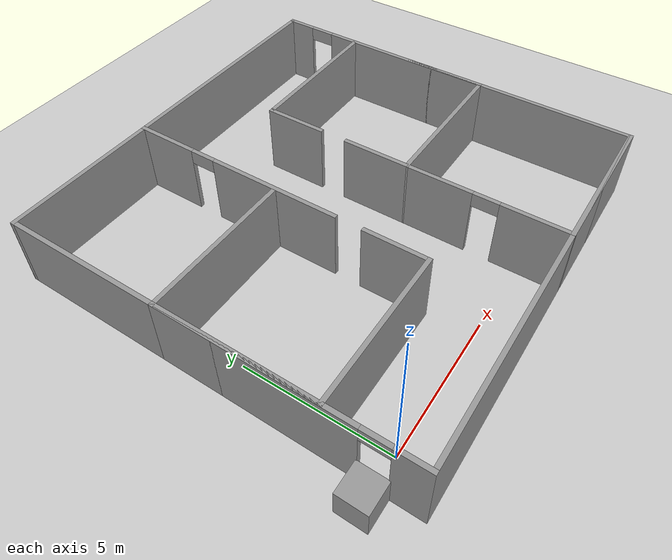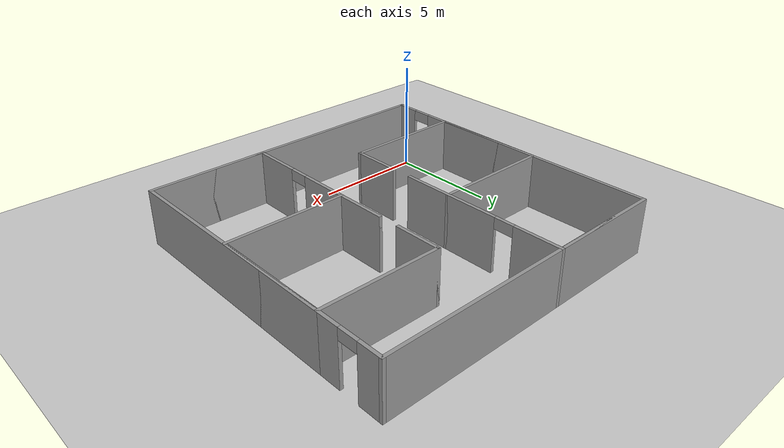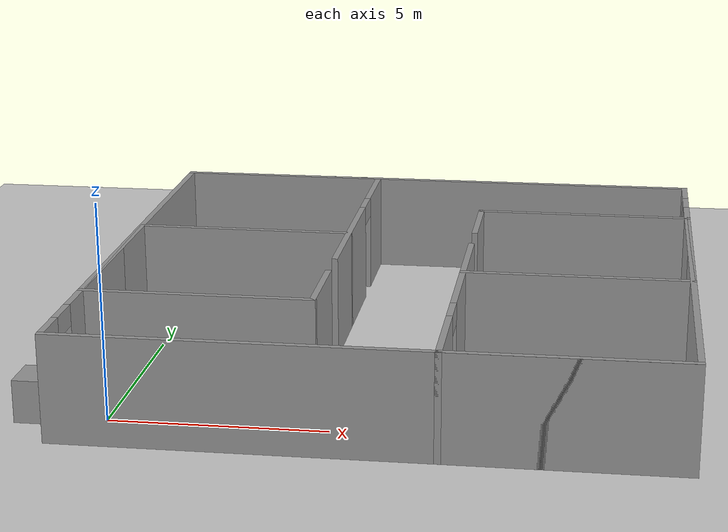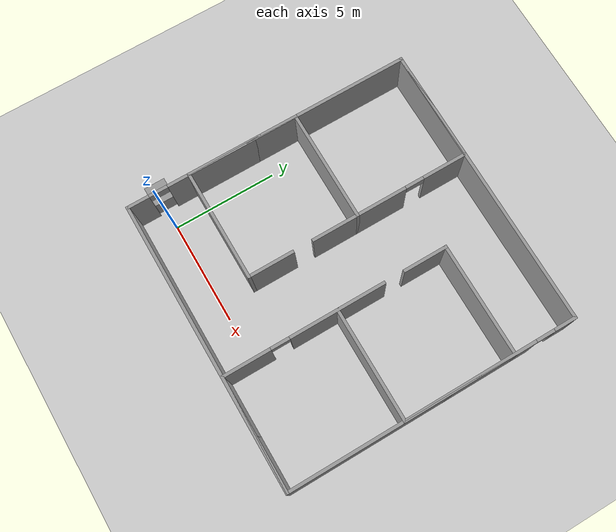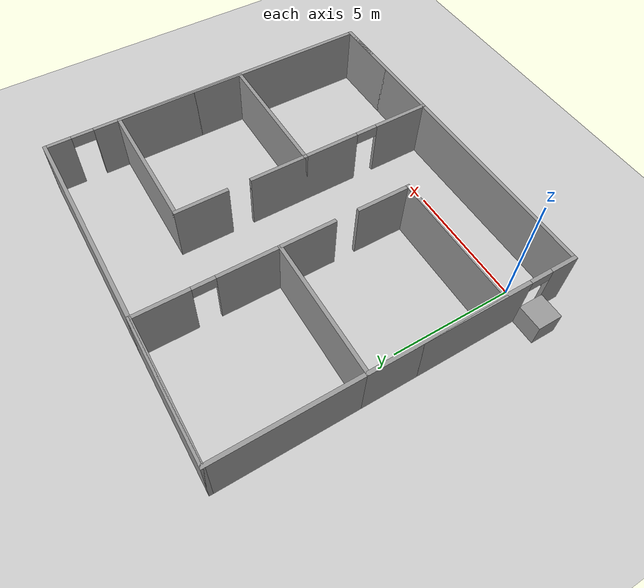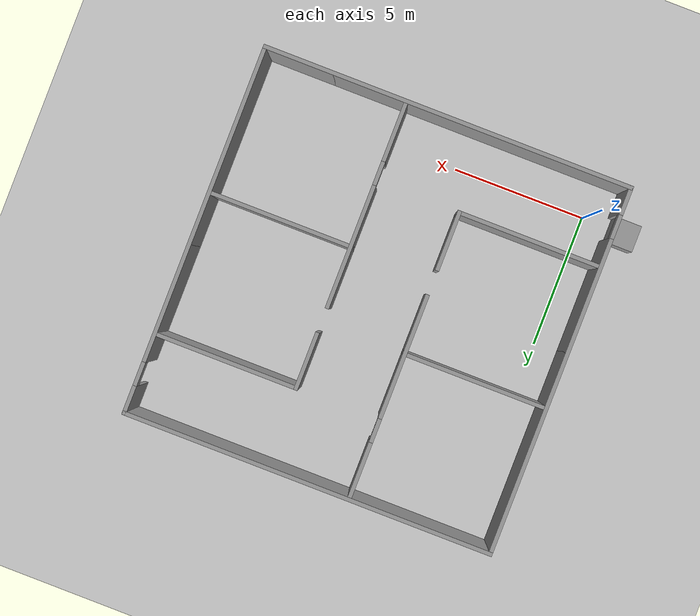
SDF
<sdf version="1.7">
 <world name="default">
  <light name="sun" type="directional">
   <pose>0 0 10 0 -0 0</pose>
   <diffuse>0.8 0.8 0.8 1</diffuse>
   <specular>0.2 0.2 0.2 1</specular>
   <attenuation>
    <range>1000</range>
    <constant>0.9</constant>
    <linear>0.01</linear>
    <quadratic>0.001</quadratic>
   </attenuation>
   <direction>-0.5 0.1 -0.9</direction>
   <spot><inner_angle>0</inner_angle><outer_angle>0</outer_angle><falloff>0</falloff></spot>
  </light>
  <model name="ground_plane">
   <static>1</static>
   <link name="link">
    <collision name="collision">
     <geometry><plane><normal>0 0 1</normal><size>100 100</size></plane></geometry>
     <surface><friction><ode><mu>100</mu><mu2>50</mu2></ode></friction></surface>
    </collision>
    <visual name="visual">
     <cast_shadows>0</cast_shadows>
     <geometry><plane><normal>0 0 1</normal><size>100 100</size></plane></geometry>
     <material>
      <script><uri>file://media/materials/scripts/gazebo.material</uri><name>Gazebo/Grey</name></script>
     </material>
    </visual>
   </link>
  </model>
  <gravity>0 0 -9.8</gravity>
  <magnetic_field>6e-06 2.3e-05 -4.2e-05</magnetic_field>
  <atmosphere type="adiabatic"/>
  <physics type="ode">
   <max_step_size>0.001</max_step_size>
   <real_time_factor>1</real_time_factor>
   <real_time_update_rate>1000</real_time_update_rate>
  </physics>
  <scene><ambient>0.4 0.4 0.4 1</ambient><background>0.7 0.7 0.7 1</background><shadows>1</shadows></scene>
  <audio><device>default</device></audio>
  <spherical_coordinates>
   <surface_model>EARTH_WGS84</surface_model>
   <latitude_deg>0</latitude_deg>
   <longitude_deg>0</longitude_deg>
   <elevation>0</elevation>
   <heading_deg>0</heading_deg>
  </spherical_coordinates>
  <model name="mapC">
   <pose>5.95767 5.54337 0 0 -0 0</pose>
   <link name="Wall_0">
    <collision name="Wall_0_Collision">
     <geometry><box><size>14 0.15 2.5</size></box></geometry>
     <pose>0 0 1.25 0 -0 0</pose>
    </collision>
    <visual name="Wall_0_Visual">
     <pose>0 0 1.25 0 -0 0</pose>
     <geometry><box><size>14 0.15 2.5</size></box></geometry>
     <material>
      <script><uri>file://media/materials/scripts/gazebo.material</uri><name>Gazebo/Grey</name></script>
      <ambient>1 1 1 1</ambient>
     </material>
     <meta><layer>0</layer></meta>
    </visual>
    <pose>0 -6.925 0 0 -0 0</pose>
   </link>
   <link name="Wall_1">
    <pose>6.925 0 0 0 -0 1.5708</pose>
    <visual name="Wall_1_Visual_0">
     <pose>-1.00314 0 1.25 0 -0 0</pose>
     <geometry><box><size>11.9937 0.15 2.5</size></box></geometry>
     <material>
      <script><uri>file://media/materials/scripts/gazebo.material</uri><name>Gazebo/Grey</name></script>
      <ambient>1 1 1 1</ambient>
     </material>
     <meta><layer>0</layer></meta>
    </visual>
    <collision name="Wall_1_Collision_0">
     <geometry><box><size>11.9937 0.15 2.5</size></box></geometry>
     <pose>-1.00314 0 1.25 0 -0 0</pose>
    </collision>
    <visual name="Wall_1_Visual_1">
     <pose>6.44686 0 1.25 0 -0 0</pose>
     <geometry><box><size>1.10629 0.15 2.5</size></box></geometry>
     <material>
      <script><uri>file://media/materials/scripts/gazebo.material</uri><name>Gazebo/Grey</name></script>
      <ambient>1 1 1 1</ambient>
     </material>
     <meta><layer>0</layer></meta>
    </visual>
    <collision name="Wall_1_Collision_1">
     <geometry><box><size>1.10629 0.15 2.5</size></box></geometry>
     <pose>6.44686 0 1.25 0 -0 0</pose>
    </collision>
    <visual name="Wall_1_Visual_2">
     <pose>5.44371 0 2.25 0 -0 0</pose>
     <geometry><box><size>0.9 0.15 0.5</size></box></geometry>
     <material>
      <script><uri>file://media/materials/scripts/gazebo.material</uri><name>Gazebo/Grey</name></script>
      <ambient>1 1 1 1</ambient>
     </material>
     <meta><layer>0</layer></meta>
    </visual>
    <collision name="Wall_1_Collision_2">
     <geometry><box><size>0.9 0.15 0.5</size></box></geometry>
     <pose>5.44371 0 2.25 0 -0 0</pose>
    </collision>
   </link>
   <link name="Wall_11">
    <collision name="Wall_11_Collision">
     <geometry><box><size>5.5 0.15 2.5</size></box></geometry>
     <pose>0 0 1.25 0 -0 0</pose>
    </collision>
    <visual name="Wall_11_Visual">
     <pose>0 0 1.25 0 -0 0</pose>
     <geometry><box><size>5.5 0.15 2.5</size></box></geometry>
     <material>
      <script><uri>file://media/materials/scripts/gazebo.material</uri><name>Gazebo/Grey</name></script>
      <ambient>1 1 1 1</ambient>
     </material>
     <meta><layer>0</layer></meta>
    </visual>
    <pose>4.25 -6.925 0 0 -0 3.14159</pose>
   </link>
   <link name="Wall_12">
    <pose>1.575 -1.5 0 0 -0 1.5708</pose>
    <visual name="Wall_12_Visual_0">
     <pose>-4.32245 0 1.25 0 -0 0</pose>
     <geometry><box><size>2.3551 0.15 2.5</size></box></geometry>
     <material>
      <script><uri>file://media/materials/scripts/gazebo.material</uri><name>Gazebo/Grey</name></script>
      <ambient>1 1 1 1</ambient>
     </material>
     <meta><layer>0</layer></meta>
    </visual>
    <collision name="Wall_12_Collision_0">
     <geometry><box><size>2.3551 0.15 2.5</size></box></geometry>
     <pose>-4.32245 0 1.25 0 -0 0</pose>
    </collision>
    <visual name="Wall_12_Visual_1">
     <pose>0.084817 0 1.25 0 -0 0</pose>
     <geometry><box><size>4.65944 0.15 2.5</size></box></geometry>
     <material>
      <script><uri>file://media/materials/scripts/gazebo.material</uri><name>Gazebo/Grey</name></script>
      <ambient>1 1 1 1</ambient>
     </material>
     <meta><layer>0</layer></meta>
    </visual>
    <collision name="Wall_12_Collision_1">
     <geometry><box><size>4.65944 0.15 2.5</size></box></geometry>
     <pose>0.084817 0 1.25 0 -0 0</pose>
    </collision>
    <visual name="Wall_12_Visual_2">
     <pose>4.40727 0 1.25 0 -0 0</pose>
     <geometry><box><size>2.18546 0.15 2.5</size></box></geometry>
     <material>
      <script><uri>file://media/materials/scripts/gazebo.material</uri><name>Gazebo/Grey</name></script>
      <ambient>1 1 1 1</ambient>
     </material>
     <meta><layer>0</layer></meta>
    </visual>
    <collision name="Wall_12_Collision_2">
     <geometry><box><size>2.18546 0.15 2.5</size></box></geometry>
     <pose>4.40727 0 1.25 0 -0 0</pose>
    </collision>
    <visual name="Wall_12_Visual_3">
     <pose>-2.6949 0 2.25 0 -0 0</pose>
     <geometry><box><size>0.9 0.15 0.5</size></box></geometry>
     <material>
      <script><uri>file://media/materials/scripts/gazebo.material</uri><name>Gazebo/Grey</name></script>
      <ambient>1 1 1 1</ambient>
     </material>
     <meta><layer>0</layer></meta>
    </visual>
    <collision name="Wall_12_Collision_3">
     <geometry><box><size>0.9 0.15 0.5</size></box></geometry>
     <pose>-2.6949 0 2.25 0 -0 0</pose>
    </collision>
    <visual name="Wall_12_Visual_4">
     <pose>2.41454 0 2.25 0 -0 0</pose>
     <geometry><box><size>0 0.15 0.5</size></box></geometry>
     <material>
      <script><uri>file://media/materials/scripts/gazebo.material</uri><name>Gazebo/Grey</name></script>
      <ambient>1 1 1 1</ambient>
     </material>
     <meta><layer>0</layer></meta>
    </visual>
    <collision name="Wall_12_Collision_4">
     <geometry><box><size>0 0.15 0.5</size></box></geometry>
     <pose>2.41454 0 2.25 0 -0 0</pose>
    </collision>
   </link>
   <link name="Wall_13">
    <collision name="Wall_13_Collision">
     <geometry><box><size>5.5 0.15 2.5</size></box></geometry>
     <pose>0 0 1.25 0 -0 0</pose>
    </collision>
    <visual name="Wall_13_Visual">
     <pose>0 0 1.25 0 -0 0</pose>
     <geometry><box><size>5.5 0.15 2.5</size></box></geometry>
     <material>
      <script><uri>file://media/materials/scripts/gazebo.material</uri><name>Gazebo/Grey</name></script>
      <ambient>1 1 1 1</ambient>
     </material>
     <meta><layer>0</layer></meta>
    </visual>
    <pose>4.25 3.925 0 0 -0 0</pose>
   </link>
   <link name="Wall_14">
    <collision name="Wall_14_Collision">
     <geometry><box><size>5.5 0.15 2.5</size></box></geometry>
     <pose>0 0 1.25 0 -0 0</pose>
    </collision>
    <visual name="Wall_14_Visual">
     <pose>0 0 1.25 0 -0 0</pose>
     <geometry><box><size>5.5 0.15 2.5</size></box></geometry>
     <material>
      <script><uri>file://media/materials/scripts/gazebo.material</uri><name>Gazebo/Grey</name></script>
      <ambient>1 1 1 1</ambient>
     </material>
     <meta><layer>0</layer></meta>
    </visual>
    <pose>6.925 1.25 0 0 -0 -1.5708</pose>
   </link>
   <link name="Wall_15">
    <collision name="Wall_15_Collision">
     <geometry><box><size>5.5 0.15 2.5</size></box></geometry>
     <pose>0 0 1.25 0 -0 0</pose>
    </collision>
    <visual name="Wall_15_Visual">
     <pose>0 0 1.25 0 -0 0</pose>
     <geometry><box><size>5.5 0.15 2.5</size></box></geometry>
     <material>
      <script><uri>file://media/materials/scripts/gazebo.material</uri><name>Gazebo/Grey</name></script>
      <ambient>1 1 1 1</ambient>
     </material>
     <meta><layer>0</layer></meta>
    </visual>
    <pose>4.25 -1.425 0 0 -0 3.14159</pose>
   </link>
   <link name="Wall_2">
    <collision name="Wall_2_Collision">
     <geometry><box><size>14 0.15 2.5</size></box></geometry>
     <pose>0 0 1.25 0 -0 0</pose>
    </collision>
    <visual name="Wall_2_Visual">
     <pose>0 0 1.25 0 -0 0</pose>
     <geometry><box><size>14 0.15 2.5</size></box></geometry>
     <material>
      <script><uri>file://media/materials/scripts/gazebo.material</uri><name>Gazebo/Grey</name></script>
      <ambient>1 1 1 1</ambient>
     </material>
     <meta><layer>0</layer></meta>
    </visual>
    <pose>0 6.925 0 0 -0 3.14159</pose>
   </link>
   <link name="Wall_3">
    <pose>-6.925 0 0 0 -0 -1.5708</pose>
    <visual name="Wall_3_Visual_0">
     <pose>-1.0018 0 1.25 0 -0 0</pose>
     <geometry><box><size>11.9964 0.15 2.5</size></box></geometry>
     <material>
      <script><uri>file://media/materials/scripts/gazebo.material</uri><name>Gazebo/Grey</name></script>
      <ambient>1 1 1 1</ambient>
     </material>
     <meta><layer>0</layer></meta>
    </visual>
    <collision name="Wall_3_Collision_0">
     <geometry><box><size>11.9964 0.15 2.5</size></box></geometry>
     <pose>-1.0018 0 1.25 0 -0 0</pose>
    </collision>
    <visual name="Wall_3_Visual_1">
     <pose>6.4482 0 1.25 0 -0 0</pose>
     <geometry><box><size>1.10359 0.15 2.5</size></box></geometry>
     <material>
      <script><uri>file://media/materials/scripts/gazebo.material</uri><name>Gazebo/Grey</name></script>
      <ambient>1 1 1 1</ambient>
     </material>
     <meta><layer>0</layer></meta>
    </visual>
    <collision name="Wall_3_Collision_1">
     <geometry><box><size>1.10359 0.15 2.5</size></box></geometry>
     <pose>6.4482 0 1.25 0 -0 0</pose>
    </collision>
    <visual name="Wall_3_Visual_2">
     <pose>5.44641 0 2.25 0 -0 0</pose>
     <geometry><box><size>0.9 0.15 0.5</size></box></geometry>
     <material>
      <script><uri>file://media/materials/scripts/gazebo.material</uri><name>Gazebo/Grey</name></script>
      <ambient>1 1 1 1</ambient>
     </material>
     <meta><layer>0</layer></meta>
    </visual>
    <collision name="Wall_3_Collision_2">
     <geometry><box><size>0.9 0.15 0.5</size></box></geometry>
     <pose>5.44641 0 2.25 0 -0 0</pose>
    </collision>
   </link>
   <link name="Wall_5">
    <collision name="Wall_5_Collision">
     <geometry><box><size>5.5 0.15 2.5</size></box></geometry>
     <pose>0 0 1.25 0 -0 0</pose>
    </collision>
    <visual name="Wall_5_Visual">
     <pose>0 0 1.25 0 -0 0</pose>
     <geometry><box><size>5.5 0.15 2.5</size></box></geometry>
     <material>
      <script><uri>file://media/materials/scripts/gazebo.material</uri><name>Gazebo/Grey</name></script>
      <ambient>1 1 1 1</ambient>
     </material>
     <meta><layer>0</layer></meta>
    </visual>
    <pose>-4.25 6.925 0 0 -0 0</pose>
   </link>
   <link name="Wall_6">
    <pose>-1.575 1.5 0 0 -0 -1.5708</pose>
    <visual name="Wall_6_Visual_0">
     <pose>-4.3856 0 1.25 0 -0 0</pose>
     <geometry><box><size>2.22881 0.15 2.5</size></box></geometry>
     <material>
      <script><uri>file://media/materials/scripts/gazebo.material</uri><name>Gazebo/Grey</name></script>
      <ambient>1 1 1 1</ambient>
     </material>
     <meta><layer>0</layer></meta>
    </visual>
    <collision name="Wall_6_Collision_0">
     <geometry><box><size>2.22881 0.15 2.5</size></box></geometry>
     <pose>-4.3856 0 1.25 0 -0 0</pose>
    </collision>
    <visual name="Wall_6_Visual_1">
     <pose>-0.02239 0 1.25 0 -0 0</pose>
     <geometry><box><size>4.69761 0.15 2.5</size></box></geometry>
     <material>
      <script><uri>file://media/materials/scripts/gazebo.material</uri><name>Gazebo/Grey</name></script>
      <ambient>1 1 1 1</ambient>
     </material>
     <meta><layer>0</layer></meta>
    </visual>
    <collision name="Wall_6_Collision_1">
     <geometry><box><size>4.69761 0.15 2.5</size></box></geometry>
     <pose>-0.02239 0 1.25 0 -0 0</pose>
    </collision>
    <visual name="Wall_6_Visual_2">
     <pose>4.36321 0 1.25 0 -0 0</pose>
     <geometry><box><size>2.27359 0.15 2.5</size></box></geometry>
     <material>
      <script><uri>file://media/materials/scripts/gazebo.material</uri><name>Gazebo/Grey</name></script>
      <ambient>1 1 1 1</ambient>
     </material>
     <meta><layer>0</layer></meta>
    </visual>
    <collision name="Wall_6_Collision_2">
     <geometry><box><size>2.27359 0.15 2.5</size></box></geometry>
     <pose>4.36321 0 1.25 0 -0 0</pose>
    </collision>
    <visual name="Wall_6_Visual_3">
     <pose>-2.82119 0 2.25 0 -0 0</pose>
     <geometry><box><size>0.9 0.15 0.5</size></box></geometry>
     <material>
      <script><uri>file://media/materials/scripts/gazebo.material</uri><name>Gazebo/Grey</name></script>
      <ambient>1 1 1 1</ambient>
     </material>
     <meta><layer>0</layer></meta>
    </visual>
    <collision name="Wall_6_Collision_3">
     <geometry><box><size>0.9 0.15 0.5</size></box></geometry>
     <pose>-2.82119 0 2.25 0 -0 0</pose>
    </collision>
    <visual name="Wall_6_Visual_4">
     <pose>2.32641 0 2.25 0 -0 0</pose>
     <geometry><box><size>0 0.15 0.5</size></box></geometry>
     <material>
      <script><uri>file://media/materials/scripts/gazebo.material</uri><name>Gazebo/Grey</name></script>
      <ambient>1 1 1 1</ambient>
     </material>
     <meta><layer>0</layer></meta>
    </visual>
    <collision name="Wall_6_Collision_4">
     <geometry><box><size>0 0.15 0.5</size></box></geometry>
     <pose>2.32641 0 2.25 0 -0 0</pose>
    </collision>
   </link>
   <link name="Wall_7">
    <collision name="Wall_7_Collision">
     <geometry><box><size>5.5 0.15 2.5</size></box></geometry>
     <pose>0 0 1.25 0 -0 0</pose>
    </collision>
    <visual name="Wall_7_Visual">
     <pose>0 0 1.25 0 -0 0</pose>
     <geometry><box><size>5.5 0.15 2.5</size></box></geometry>
     <material>
      <script><uri>file://media/materials/scripts/gazebo.material</uri><name>Gazebo/Grey</name></script>
      <ambient>1 1 1 1</ambient>
     </material>
     <meta><layer>0</layer></meta>
    </visual>
    <pose>-4.25 -3.925 0 0 -0 3.14159</pose>
   </link>
   <link name="Wall_8">
    <collision name="Wall_8_Collision">
     <geometry><box><size>5.5 0.15 2.5</size></box></geometry>
     <pose>0 0 1.25 0 -0 0</pose>
    </collision>
    <visual name="Wall_8_Visual">
     <pose>0 0 1.25 0 -0 0</pose>
     <geometry><box><size>5.5 0.15 2.5</size></box></geometry>
     <material>
      <script><uri>file://media/materials/scripts/gazebo.material</uri><name>Gazebo/Grey</name></script>
      <ambient>1 1 1 1</ambient>
     </material>
     <meta><layer>0</layer></meta>
    </visual>
    <pose>-6.925 -1.25 0 0 -0 1.5708</pose>
   </link>
   <link name="Wall_9">
    <collision name="Wall_9_Collision">
     <geometry><box><size>5.5 0.15 2.5</size></box></geometry>
     <pose>0 0 1.25 0 -0 0</pose>
    </collision>
    <visual name="Wall_9_Visual">
     <pose>0 0 1.25 0 -0 0</pose>
     <geometry><box><size>5.5 0.15 2.5</size></box></geometry>
     <material>
      <script><uri>file://media/materials/scripts/gazebo.material</uri><name>Gazebo/Grey</name></script>
      <ambient>1 1 1 1</ambient>
     </material>
     <meta><layer>0</layer></meta>
    </visual>
    <pose>-4.25 1.425 0 0 -0 0</pose>
   </link>
   <static>1</static>
  </model>
  <model name="Untitled">
   <link name="link_0">
    <inertial>
     <mass>1</mass>
     <inertia>
      <ixx>0.166667</ixx>
      <ixy>0</ixy>
      <ixz>0</ixz>
      <iyy>0.166667</iyy>
      <iyz>0</iyz>
      <izz>0.166667</izz>
     </inertia>
    </inertial>
    <visual name="visual">
     <geometry><box><size>1 1 1</size></box></geometry>
     <material>
      <lighting>1</lighting>
      <script><uri>file://media/materials/scripts/gazebo.material</uri><name>Gazebo/Grey</name></script>
      <shader type="pixel"/>
     </material>
    </visual>
    <collision name="collision">
     <geometry><box><size>1 1 1</size></box></geometry>
     <surface>
      <friction>
       <ode><mu>1</mu><mu2>1</mu2><fdir1>0 0 0</fdir1><slip1>0</slip1><slip2>0</slip2></ode>
       <torsional>
        <coefficient>1</coefficient>
        <patch_radius>0</patch_radius>
        <surface_radius>0</surface_radius>
        <use_patch_radius>1</use_patch_radius>
        <ode><slip>0</slip></ode>
       </torsional>
      </friction>
      <bounce><restitution_coefficient>0</restitution_coefficient><threshold>1e+06</threshold></bounce>
      <contact>
       <collide_without_contact>0</collide_without_contact>
       <collide_without_contact_bitmask>1</collide_without_contact_bitmask>
       <collide_bitmask>1</collide_bitmask>
       <ode>
        <soft_cfm>0</soft_cfm>
        <soft_erp>0.2</soft_erp>
        <kp>1e+13</kp>
        <kd>1</kd>
        <max_vel>0.01</max_vel>
        <min_depth>0</min_depth>
       </ode>
       <bullet>
        <split_impulse>1</split_impulse>
        <split_impulse_penetration_threshold>-0.01</split_impulse_penetration_threshold>
        <soft_cfm>0</soft_cfm>
        <soft_erp>0.2</soft_erp>
        <kp>1e+13</kp>
        <kd>1</kd>
       </bullet>
      </contact>
     </surface>
    </collision>
   </link>
   <static>0</static>
   <pose>-1.52814 0.090891 0.5 0 -0 0</pose>
  </model>
 </world>
</sdf>
